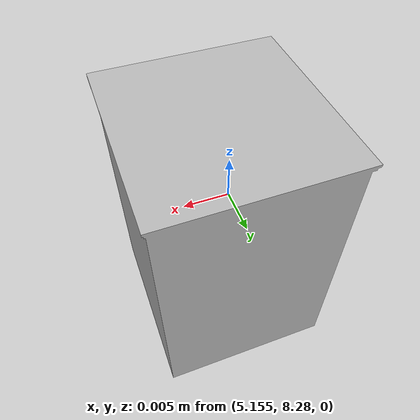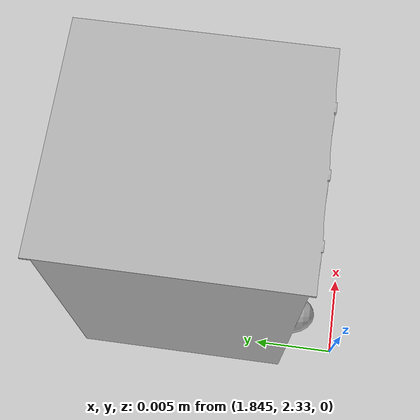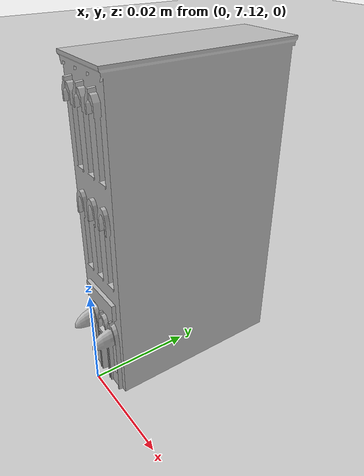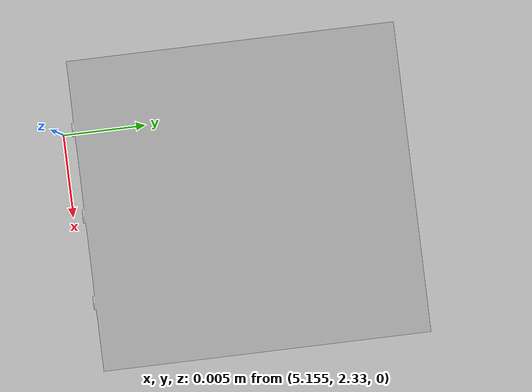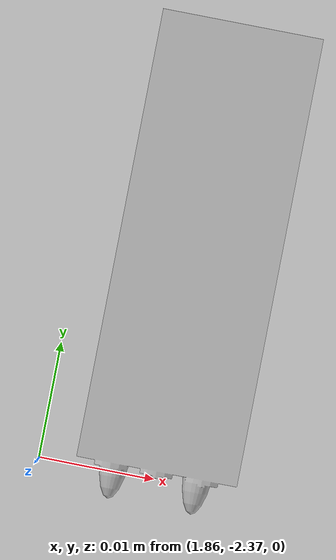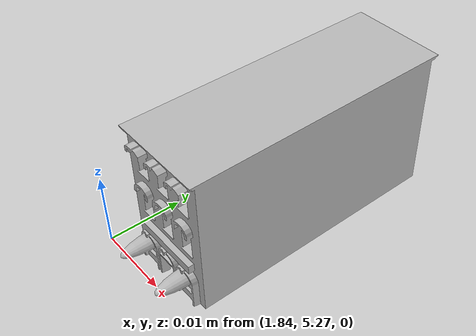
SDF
<sdf version="1.4">
 <world name="trial_1_world">
  <include><uri>ground_plane</uri></include>
  <include><uri>model://sun</uri></include>
  <include><uri>model://law_office</uri><name>building1</name><pose>1.85 2.34 0.0 0 0 0</pose></include>
  <include><uri>model://office_1</uri><name>building2</name><pose>1.85 5.29 0.0 0 0 0</pose></include>
  <include><uri>model://law_office</uri><name>building3</name><pose>1.85 8.29 0.0 0 0 0</pose></include>
  <include><uri>model://office_2</uri><name>building4</name><pose>0 7.14 0.0 0 0 0</pose></include>
  <include><uri>model://office_1</uri><name>building5</name><pose>-1.85 7.14 0.0 0 0 0</pose></include>
  <include><uri>model://office_1</uri><name>building21</name><pose>1.87 -2.35 0.0 0 0 0</pose></include>
  <include><uri>model://law_office</uri><name>building22</name><pose>-5.21 8.29 0.0 0 0 0</pose></include>
  <include><uri>model://office_2</uri><name>building23</name><pose>-6.90 7.14 0.0 0 0 0</pose></include>
  <include><uri>model://office_2</uri><name>building25</name><pose>-5.23 3.808 0.0 0 0 0</pose></include>
  <include><uri>model://law_office</uri><name>building31</name><pose>1.85 11.86 0.0 0 0 0</pose></include>
  <include><uri>model://office_2</uri><name>building32</name><pose>0 13.22 0.0 0 0 0</pose></include>
  <include><uri>model://office_1</uri><name>building33</name><pose>-1.85 13.22 0.0 0 0 0</pose></include>
  <include><uri>model://law_office</uri><name>building41</name><pose>5.16 2.34 0.0 0 0 0</pose></include>
  <include><uri>model://office_1</uri><name>building42</name><pose>5.16 5.29 0.0 0 0 0</pose></include>
  <include><uri>model://law_office</uri><name>building43</name><pose>5.16 8.29 0.0 0 0 0</pose></include>
 </world>
</sdf>

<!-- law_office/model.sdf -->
<sdf version="1.6">
  <model name="law_office">
    <pose>2.1 1.8 0.2 0 0 0</pose>
    <static>true</static>
    <link name="link">
      <collision name="collision">
        <pose>1.8 1.8 0.2 0 0 0</pose>
        <geometry>
          <box>
            <size>0.0006844012958 0.0005431646878 0.0013924872736</size>
          </box>
        </geometry>
      </collision>
      <visual name="visual">
        <geometry>
	        <mesh>
            <uri>model://law_office/meshes/law_office.dae</uri>
            <scale>0.1844012958 0.2431646878 0.13924872736</scale>
          </mesh>
        </geometry>
      </visual>
    </link>
  </model>
</sdf>

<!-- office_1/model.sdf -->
<sdf version="1.6">
  <model name="law_office">
<pose>2.1 1.8 0.2 0 0 0</pose>
    <static>true</static>
    <link name="link">
      <collision name="collision">
        <pose>1.8 1.8 0.2 0 0 0</pose>
        <geometry>
          <box>
            <size>0.0006844012958 0.0005431646878 0.0013924872736</size>
          </box>
        </geometry>
      </collision>
      <visual name="visual">
        <geometry>
	<mesh>
            <uri>model://law_office/meshes/law_office.dae</uri>
<scale>0.1844012958 0.6431646878 0.13924872736</scale>
          </mesh>
        </geometry>
      </visual>
    </link>
  </model>
</sdf>

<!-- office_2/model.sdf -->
<sdf version="1.6">
  <model name="law_office">
<pose>2.1 1.8 0.2 0 0 0</pose>
    <static>true</static>
    <link name="link">
      <collision name="collision">
        <pose>1.8 1.8 0.2 0 0 0</pose>
        <geometry>
          <box>
            <size>0.0006844012958 0.0005431646878 0.0013924872736</size>
          </box>
        </geometry>
      </collision>
      <visual name="visual">
        <geometry>
	<mesh>
            <uri>model://law_office/meshes/law_office.dae</uri>
<scale>0.1844012958 0.6431646878 0.43924872736</scale>
          </mesh>
        </geometry>
      </visual>
    </link>
  </model>
</sdf>
